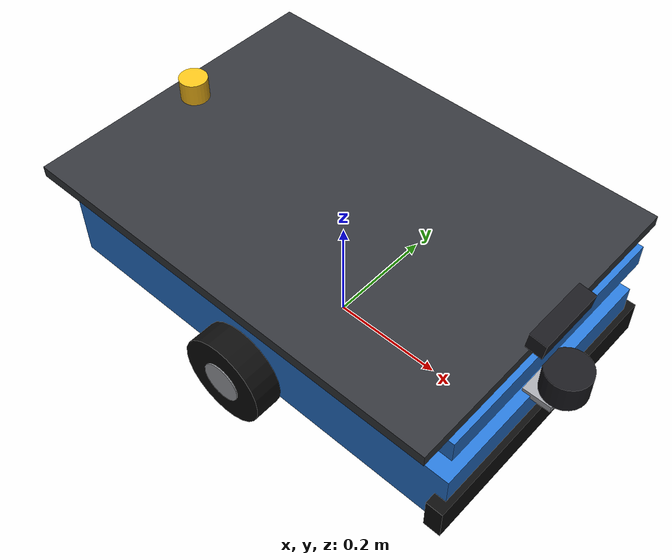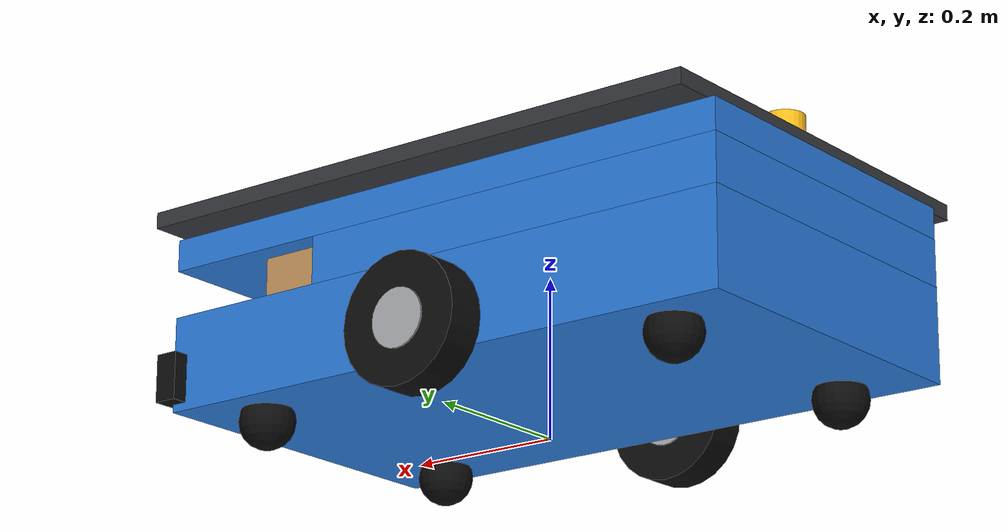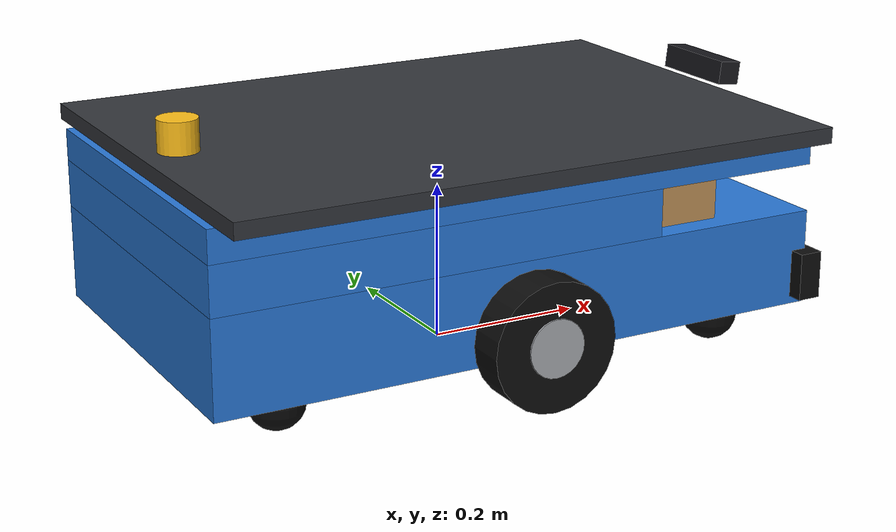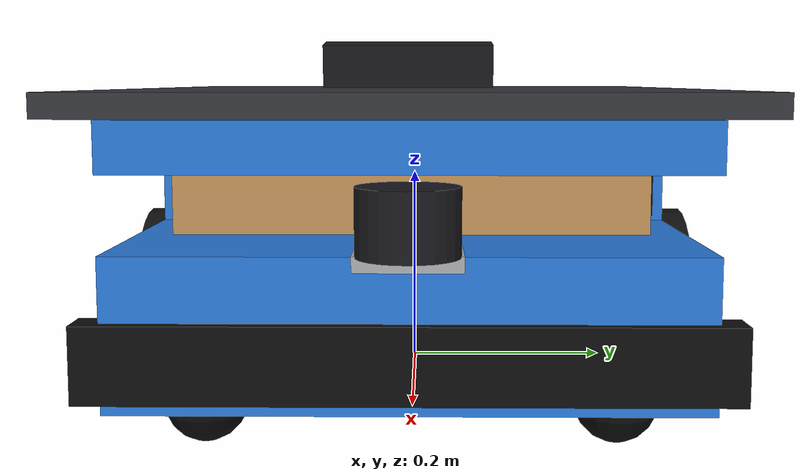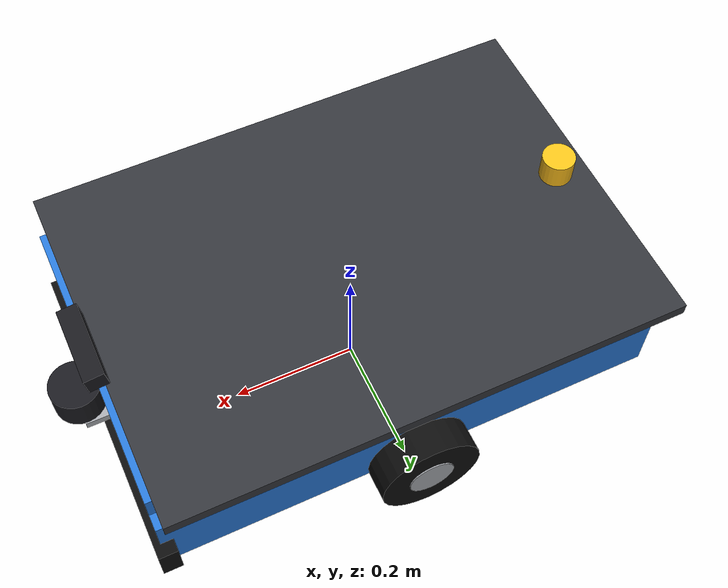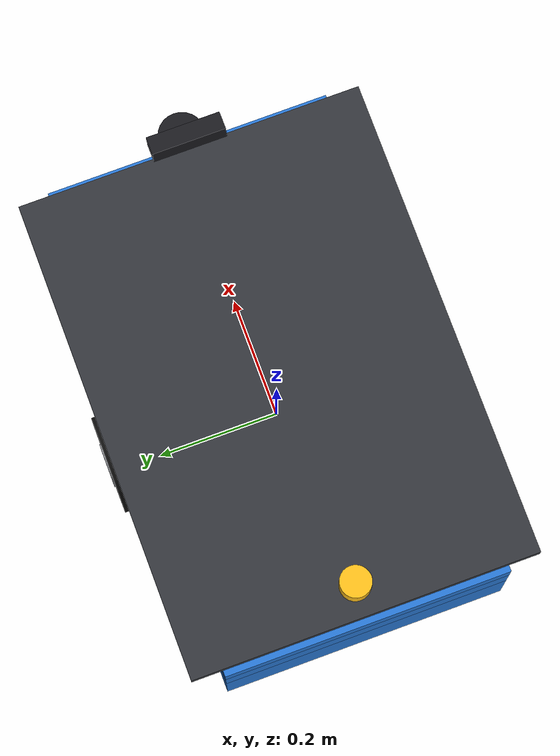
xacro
<?xml version="1.0"?>
<robot xmlns:xacro="http://www.ros.org/wiki/xacro" name="amr">
  <xacro:arg name="robot_name" default="amr_01"/>
  <xacro:arg name="color" default="0.16 0.47 0.84 1"/>
  <xacro:arg name="gazebo" default="true"/>
  <xacro:arg name="camera" default="true"/>
  <xacro:arg name="camera_rate" default="5"/>
  <xacro:arg name="camera_width" default="320"/>    <!-- RGB-D resolution (point cloud size) -->
  <xacro:arg name="camera_height" default="240"/>
  <xacro:arg name="lidar_rate" default="10"/>
  <xacro:arg name="odom" default="ground_truth"/>   <!-- ground_truth | wheel (for AMCL / Nav2) -->

  <xacro:property name="ns" value="$(arg robot_name)"/>
  <xacro:property name="pfx" value=""/>  <!-- frames are prefixed by robot_state_publisher (frame_prefix) -->
  <xacro:property name="PI" value="3.14159265359"/>

  <!-- dimensions -->
  <xacro:property name="body_l" value="0.80"/>
  <xacro:property name="body_w" value="0.46"/>
  <xacro:property name="body_h" value="0.22"/>
  <xacro:property name="clearance" value="0.05"/>
  <xacro:property name="wheel_r" value="0.08"/>
  <xacro:property name="wheel_w" value="0.05"/>
  <xacro:property name="wheel_sep" value="0.52"/>
  <xacro:property name="caster_r" value="0.035"/>
  <xacro:property name="caster_x" value="0.30"/>
  <xacro:property name="caster_y" value="0.17"/>
  <xacro:property name="mass_body" value="45.0"/>
  <!-- scanner slot: height band around the lidar plane (0.20 m) and how far it is cut back -->
  <xacro:property name="slot_z0" value="0.17"/>
  <xacro:property name="slot_z1" value="0.23"/>
  <xacro:property name="slot_x" value="0.18"/>

  <material name="body"><color rgba="$(arg color)"/></material>
  <material name="deck"><color rgba="0.20 0.21 0.23 1"/></material>
  <material name="rubber"><color rgba="0.05 0.05 0.05 1"/></material>
  <material name="metal"><color rgba="0.65 0.66 0.68 1"/></material>
  <material name="sensor"><color rgba="0.10 0.10 0.12 1"/></material>
  <material name="lamp"><color rgba="1.0 0.75 0.10 1"/></material>

  <xacro:macro name="box_inertia" params="m x y z">
    <inertia ixx="${m*(y*y+z*z)/12}" ixy="0" ixz="0" iyy="${m*(x*x+z*z)/12}" iyz="0" izz="${m*(x*x+y*y)/12}"/>
  </xacro:macro>
  <xacro:macro name="cyl_inertia" params="m r h">
    <inertia ixx="${m*(3*r*r+h*h)/12}" ixy="0" ixz="0" iyy="${m*(3*r*r+h*h)/12}" iyz="0" izz="${m*r*r/2}"/>
  </xacro:macro>

  <!-- ============================================================ chassis -->
  <link name="${pfx}base_footprint"/>

  <link name="${pfx}base_link">
    <visual>
      <origin xyz="0 0 ${(clearance + slot_z0) / 2 - wheel_r}"/>
      <geometry><box size="${body_l} ${body_w} ${slot_z0 - clearance}"/></geometry>
      <material name="body"/>
    </visual>
    <visual>
      <origin xyz="${(slot_x - body_l/2) / 2} 0 ${(slot_z0 + slot_z1) / 2 - wheel_r}"/>
      <geometry><box size="${slot_x + body_l/2} ${body_w} ${slot_z1 - slot_z0}"/></geometry>
      <material name="body"/>
    </visual>
    <visual>
      <origin xyz="${slot_x + 0.003} 0 ${(slot_z0 + slot_z1) / 2 - wheel_r}"/>
      <geometry><box size="0.006 ${body_w - 0.02} ${slot_z1 - slot_z0 - 0.01}"/></geometry>
      <material name="sensor"/>
    </visual>
    <visual>
      <origin xyz="0 0 ${(slot_z1 + clearance + body_h) / 2 - wheel_r}"/>
      <geometry><box size="${body_l} ${body_w} ${clearance + body_h - slot_z1}"/></geometry>
      <material name="body"/>
    </visual>
    <visual>
      <!-- payload deck (covers the wheels) -->
      <origin xyz="0 0 ${clearance + body_h + 0.01 - wheel_r}"/>
      <geometry><box size="${body_l - 0.02} 0.56 0.02"/></geometry>
      <material name="deck"/>
    </visual>
    <visual>
      <!-- front bumper -->
      <origin xyz="${body_l/2 - 0.005} 0 ${clearance + 0.04 - wheel_r}"/>
      <geometry><box size="0.03 ${body_w + 0.04} 0.06"/></geometry>
      <material name="rubber"/>
    </visual>
    <visual>
      <!-- status lamp -->
      <origin xyz="${-body_l/2 + 0.06} 0 ${clearance + body_h + 0.04 - wheel_r}"/>
      <geometry><cylinder radius="0.025" length="0.04"/></geometry>
      <material name="lamp"/>
    </visual>
    <collision>
      <origin xyz="0 0 ${clearance + body_h/2 - wheel_r}"/>
      <geometry><box size="${body_l} ${body_w} ${body_h}"/></geometry>
    </collision>
    <inertial>
      <origin xyz="0 0 ${clearance + body_h/2 - wheel_r}"/>
      <mass value="${mass_body}"/>
      <xacro:box_inertia m="${mass_body}" x="${body_l}" y="${body_w}" z="${body_h}"/>
    </inertial>
  </link>
  <joint name="base_footprint_joint" type="fixed">
    <parent link="${pfx}base_footprint"/>
    <child link="${pfx}base_link"/>
    <origin xyz="0 0 ${wheel_r}"/>
  </joint>

  <!-- ======================================================= drive wheels -->
  <xacro:macro name="drive_wheel" params="side y">
    <link name="${pfx}${side}_wheel_link">
      <visual>
        <origin rpy="${PI/2} 0 0"/>
        <geometry><cylinder radius="${wheel_r}" length="${wheel_w}"/></geometry>
        <material name="rubber"/>
      </visual>
      <visual>
        <origin rpy="${PI/2} 0 0"/>
        <geometry><cylinder radius="${wheel_r*0.45}" length="${wheel_w + 0.004}"/></geometry>
        <material name="metal"/>
      </visual>
      <collision>
        <origin rpy="${PI/2} 0 0"/>
        <geometry><cylinder radius="${wheel_r}" length="${wheel_w}"/></geometry>
      </collision>
      <inertial>
        <mass value="1.5"/>
        <xacro:cyl_inertia m="1.5" r="${wheel_r}" h="${wheel_w}"/>
      </inertial>
    </link>
    <joint name="${side}_wheel_joint" type="continuous">
      <parent link="${pfx}base_link"/>
      <child link="${pfx}${side}_wheel_link"/>
      <origin xyz="0 ${y} 0"/>
      <axis xyz="0 1 0"/>
      <dynamics damping="0.05" friction="0.0"/>
    </joint>
    <gazebo reference="${pfx}${side}_wheel_link">
      <mu1>1.2</mu1>
      <mu2>1.2</mu2>
      <kp>1e6</kp>
      <kd>100</kd>
      <minDepth>0.001</minDepth>
    </gazebo>
  </xacro:macro>
  <xacro:drive_wheel side="left" y="${wheel_sep/2}"/>
  <xacro:drive_wheel side="right" y="${-wheel_sep/2}"/>

  <!-- ===================================================== 4 free casters -->
  <xacro:macro name="caster" params="name x y">
    <link name="${pfx}caster_${name}_link">
      <visual>
        <!-- swivel housing -->
        <origin xyz="0 0 ${caster_r + 0.012}"/>
        <geometry><cylinder radius="0.03" length="0.025"/></geometry>
        <material name="metal"/>
      </visual>
      <visual>
        <geometry><sphere radius="${caster_r}"/></geometry>
        <material name="rubber"/>
      </visual>
      <collision>
        <geometry><sphere radius="${caster_r}"/></geometry>
      </collision>
      <inertial>
        <mass value="0.3"/>
        <inertia ixx="1.5e-4" ixy="0" ixz="0" iyy="1.5e-4" iyz="0" izz="1.5e-4"/>
      </inertial>
    </link>
    <joint name="caster_${name}_joint" type="fixed">
      <parent link="${pfx}base_link"/>
      <child link="${pfx}caster_${name}_link"/>
      <origin xyz="${x} ${y} ${caster_r - wheel_r}"/>
    </joint>
    <gazebo reference="${pfx}caster_${name}_link">
      <mu1>0.0</mu1>
      <mu2>0.0</mu2>
      <kp>1e6</kp>
      <kd>100</kd>
      <minDepth>0.001</minDepth>
    </gazebo>
  </xacro:macro>
  <xacro:caster name="front_left" x="${caster_x}" y="${caster_y}"/>
  <xacro:caster name="front_right" x="${caster_x}" y="${-caster_y}"/>
  <xacro:caster name="rear_left" x="${-caster_x}" y="${caster_y}"/>
  <xacro:caster name="rear_right" x="${-caster_x}" y="${-caster_y}"/>

  <!-- ========================================================== 2D lidar -->
  <link name="${pfx}lidar_link">
    <visual>
      <geometry><cylinder radius="0.038" length="0.05"/></geometry>
      <material name="sensor"/>
    </visual>
    <visual>
      <origin xyz="-0.02 0 -0.03"/>
      <geometry><box size="0.05 0.08 0.012"/></geometry>
      <material name="metal"/>
    </visual>
    <inertial>
      <mass value="0.2"/>
      <inertia ixx="1e-4" ixy="0" ixz="0" iyy="1e-4" iyz="0" izz="1e-4"/>
    </inertial>
  </link>
  <joint name="lidar_joint" type="fixed">
    <parent link="${pfx}base_link"/>
    <child link="${pfx}lidar_link"/>
    <!-- front centre, 0.20 m above the floor, in front of the bumper; 270 deg field
         of view through the scanner slot of the chassis -->
    <origin xyz="0.43 0 ${0.20 - wheel_r}"/>
  </joint>

  <!-- ===================================================== RGB-D camera -->
  <link name="${pfx}camera_link">
    <visual>
      <geometry><box size="0.03 0.12 0.03"/></geometry>
      <material name="sensor"/>
    </visual>
    <inertial>
      <mass value="0.1"/>
      <inertia ixx="1e-5" ixy="0" ixz="0" iyy="1e-5" iyz="0" izz="1e-5"/>
    </inertial>
  </link>
  <joint name="camera_joint" type="fixed">
    <parent link="${pfx}base_link"/>
    <child link="${pfx}camera_link"/>
    <origin xyz="0.40 0 ${0.31 - wheel_r}" rpy="0 0.12 0"/>
  </joint>
  <link name="${pfx}camera_optical_frame"/>
  <joint name="camera_optical_joint" type="fixed">
    <parent link="${pfx}camera_link"/>
    <child link="${pfx}camera_optical_frame"/>
    <origin rpy="${-PI/2} 0 ${-PI/2}"/>
  </joint>

  <!-- ============================================== cargo (visual load) -->
  <material name="cargo"><color rgba="0.74 0.56 0.34 1"/></material>
  <link name="${pfx}cargo_link">
    <visual>
      <geometry><box size="0.56 0.40 0.22"/></geometry>
      <material name="cargo"/>
    </visual>
    <visual>
      <origin xyz="0 0 0.111"/>
      <geometry><box size="0.57 0.06 0.004"/></geometry>
      <material name="deck"/>
    </visual>
    <inertial>
      <mass value="1.0"/>
      <inertia ixx="0.02" ixy="0" ixz="0" iyy="0.03" iyz="0" izz="0.04"/>
    </inertial>
  </link>
  <joint name="cargo_joint" type="prismatic">
    <parent link="${pfx}base_link"/>
    <child link="${pfx}cargo_link"/>
    <origin xyz="0 0 ${0.17 - wheel_r}"/>
    <axis xyz="0 0 1"/>
    <limit lower="-0.30" upper="0.24" effort="300" velocity="1.0"/>
  </joint>

  <xacro:if value="$(arg gazebo)">
    <xacro:include filename="$(find amr_description)/urdf/amr.gazebo.xacro"/>
    <xacro:amr_gazebo ns="${ns}" wheel_sep="${wheel_sep}" wheel_r="${wheel_r}"
                      camera="$(arg camera)" camera_rate="$(arg camera_rate)"
                      camera_width="$(arg camera_width)" camera_height="$(arg camera_height)"
                      lidar_rate="$(arg lidar_rate)" odom="$(arg odom)"/>
  </xacro:if>
</robot>
